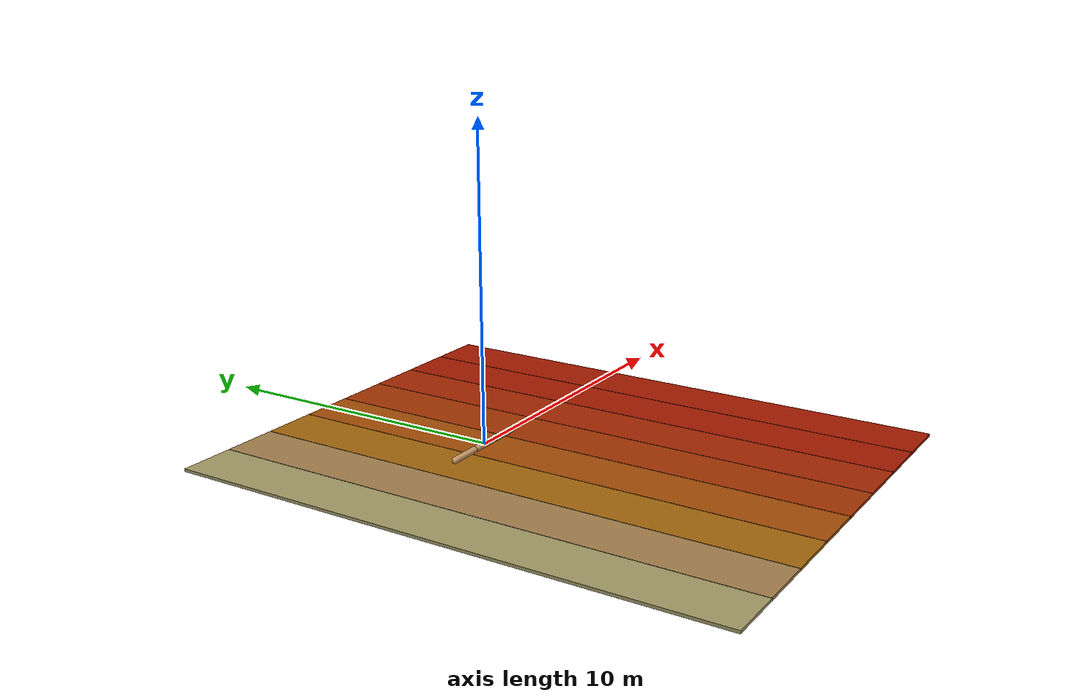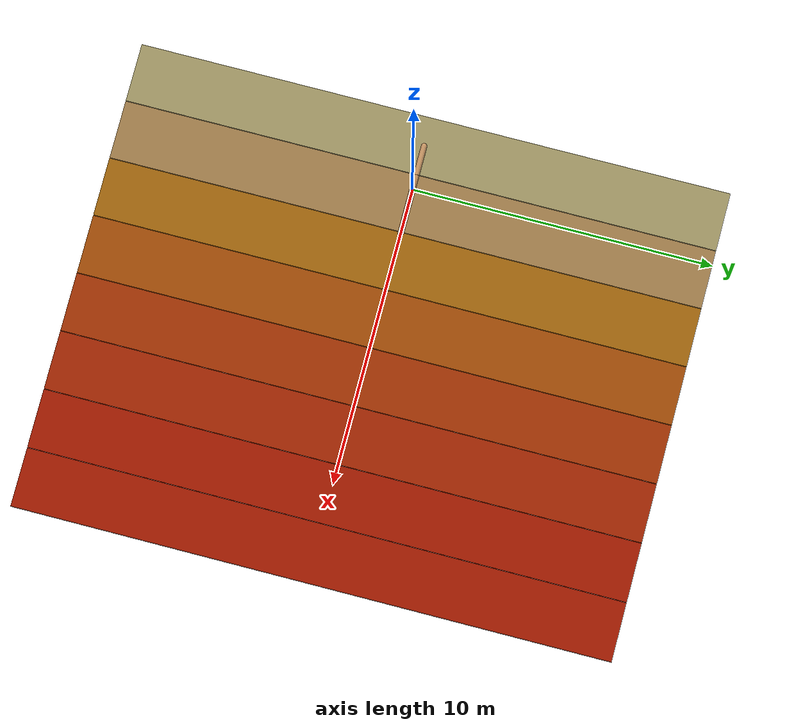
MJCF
<mujoco model="swimmer">
  <compiler inertiafromgeom="true" angle="degree" coordinate="local" />
  <custom>
    <numeric name="frame_skip" data="50" />
  </custom>
  <option timestep="0.001" density="4000" viscosity="0.1" collision="predefined" integrator="Euler" iterations="1000">
    <flag warmstart="disable" />
  </option>
  <default>
    <geom contype='1' conaffinity='1' condim='1' rgba='0.8 0.6 .4 1' material="geom" />
  </default>
  <asset>
    <texture type="skybox" builtin="gradient" width="100" height="100" rgb1="1 1 1" rgb2="0 0 0" />
    <texture name="texgeom" type="cube" builtin="flat" mark="cross" width="127" height="1278" rgb1="0.8 0.6 0.4" rgb2="0.8 0.6 0.4" markrgb="1 1 1" random="0.01" />
    <texture name="texplane" type="2d" builtin="checker" rgb1="0 0 0" rgb2="0.8 0.8 0.8" width="100" height="100" />
    <material name='MatPlane' texture="texplane" shininess="1" texrepeat="30 30" specular="1"  reflectance="0.5" />
    <material name='geom' texture="texgeom" texuniform="true" />
  </asset>
  <worldbody>
    <light directional="true" cutoff="100" exponent="1" diffuse="1 1 1" specular=".1 .1 .1" pos="0 0 1.3" dir="-0 0 -1.3" />

    <!--geom name='floor' material="MatPlane" pos='0 0 -0.1' size='40 40 0.1' type='plane' conaffinity='1' rgba='0.8 0.9 0.8 1' condim='3' /-->

    <body name='block_0' pos = '-2 0 -2'>
        <geom name='block_0' conaffinity="1" contype="1" condim="3" type='box' size='0.99 10 0.05' mass="10"  rgba="0.639 0.6 0.4 1"/>
    </body>
    <body name='block_1' pos = '0 0 -2'>
        <geom name='block_1' conaffinity="1" contype="1" condim="3" type='box' size='0.99 10 0.05' mass="10" rgba="0.639 0.5 0.3 1" />
    </body>
    <body name='block_2' pos = '2 0 -2'>
        <geom name='block_2' conaffinity="1" contype="1" condim="3" type='box' size='0.99 10 0.05' mass="10"  rgba="0.639 0.4 0.05 1"/>
    </body>
    <body name='block_3' pos = '4 0 -2'>
        <geom name='block_3' conaffinity="1" contype="1" condim="3" type='box' size='0.99 10 0.05' mass="10" rgba="0.639 0.3 0.025 1"/>
    </body>
    <body name='block_4' pos = '6 0 -2'>
        <geom name='block_4' conaffinity="1" contype="1" condim="3" type='box' size='0.99 10 0.05' mass="10" rgba="0.639 0.2 0.01 1"/>
    </body>
    <body name='block_5' pos = '8 0 -2'>
        <geom name='block_5' conaffinity="1" contype="1" condim="3" type='box' size='0.99 10 0.05' mass="10" rgba="0.639 0.15 0.005 1"/>
    </body>
    <body name='block_6' pos = '10 0 -2'>
        <geom name='block_6' conaffinity="1" contype="1" condim="3" type='box' size='0.99 10 0.05' mass="10" rgba="0.639 0.1 0.0 1"/>
    </body>
    <body name='block_7' pos = '12 0 -2'>
        <geom name='block_7' conaffinity="1" contype="1" condim="3" type='box' size='0.99 10 0.05' mass="10" rgba="0.639 0.1 0.0 1"/>
    </body>

    <!--  ================= SWIMMER ================= /-->
    <body name="torso" pos="0 0 0">
      <geom name="torso" type="capsule" fromto="1.5 0 0 0.5 0 0" size="0.1" density="1000" />
      <joint pos="0 0 0" type="slide" name="slider1" axis="1 0 0" />
      <joint pos="0 0 0" type="slide" name="slider2" axis="0 1 0" />
      <joint name="rot" type="hinge" pos="0 0 0" axis="0 0 1" />
      <body name="mid" pos="0.5 0 0">
        <geom name="mid" type="capsule" fromto="0 0 0 -1 0 0" size="0.1" density="1000" />
        <joint name="rot2" type="hinge" pos="0 0 0" axis="0 0 1" range="-100 100" limited="true" />
        <body name="back" pos="-1 0 0">
          <geom name="back" type="capsule" fromto="0 0 0 -1 0 0" size="0.1" density="1000" />
          <joint name="rot3" type="hinge" pos="0 0 0" axis="0 0 1" range="-100 100" limited="true" />
        </body>
      </body>
    </body>
  </worldbody>
  <actuator>
    <motor joint="rot2" ctrllimited="true" ctrlrange="-50 50" />
    <motor joint="rot3" ctrllimited="true" ctrlrange="-50 50" />
  </actuator>
</mujoco>
